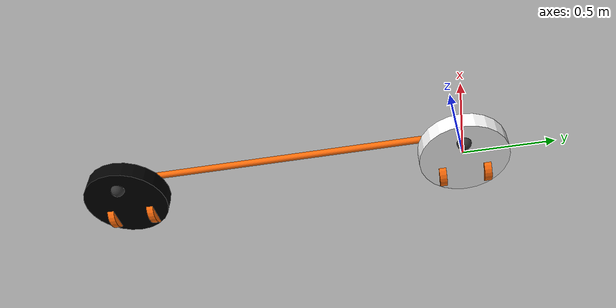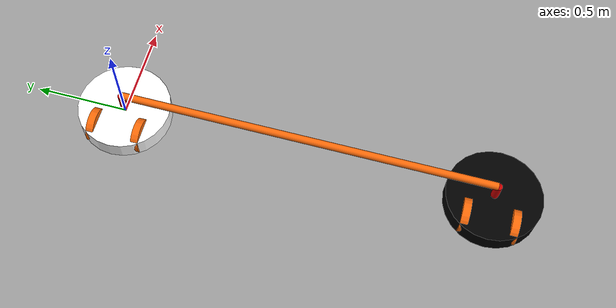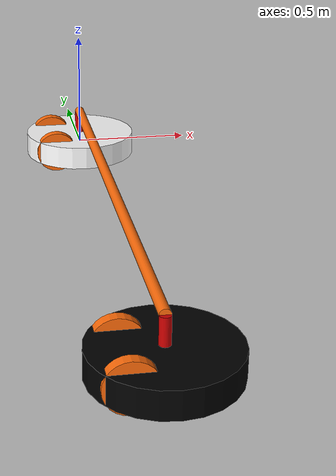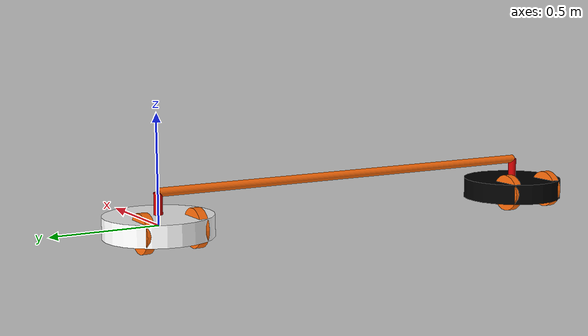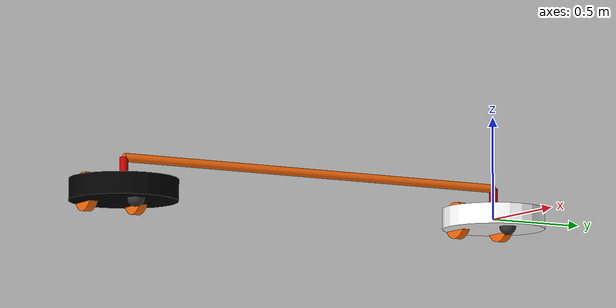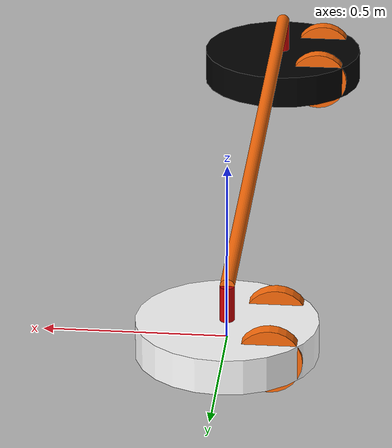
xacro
<?xml version="1.0"?>

<robot name="double_logger" xmlns:xacro="https://www.ros.org/wiki/xacro" >
    <!-- properties of link_log -->
    <xacro:property name="R_LOG" value="0.02"/>
    <xacro:property name="L_LOG" value="2"/>
    <xacro:property name="M_LOG" value="0.04"/>

    <!-- Included URDF Files -->
    <xacro:include filename="$(find loggers_description)/urdf/logger.urdf.xacro" />
    <xacro:include filename="$(find loggers_description)/urdf/logger_copy.urdf.xacro" />

    <!-- Instantiate logger_base_macro once (has no parameters atm) -->
    <xacro:logger_macro model_name="logger0"/>
    <!-- differential_drive_controller plugin for logger0-->
    <gazebo>
        <plugin name="differential_drive_controller" filename="libgazebo_ros_diff_drive.so">
            <legacyMode>false</legacyMode>
            <alwaysOn>true</alwaysOn>
            <updateRate>100</updateRate>
            <leftJoint>logger0-chassis2left_wheel</leftJoint>
            <rightJoint>logger0-chassis2right_wheel</rightJoint>
            <wheelSeparation>0.25</wheelSeparation>
            <wheelDiameter>0.18</wheelDiameter>
            <wheelTorque>1</wheelTorque>
            <commandTopic>logger0/cmd_vel</commandTopic>
            <odometryTopic>odom0</odometryTopic>
            <odometryFrame>odom0</odometryFrame>
            <robotBaseFrame>logger0-chassis</robotBaseFrame>
        </plugin>
    </gazebo>

    <joint name="logger0-hat2log" type="revolute">
        <origin rpy="0 0 0" xyz="0 0 ${L_HAT/2}"/>
        <limit effort="0" lower="0" upper="0" velocity="0"/>
        <parent link="logger0-hat"/>
        <child link="log" />
        <axis rpy="0 0 0" xyz="0 0 1"/>
    </joint>

    <link name="log">
        <visual>
            <origin rpy="${PI/2} 0 0" xyz="0 ${-L_LOG/2} 0"/>
            <geometry>
                <cylinder length="${L_LOG}" radius="${R_LOG}"/>
        </geometry>
        <material name="orange"/>
        </visual>
        <collision>
            <origin rpy="${PI/2} 0 0" xyz="0 ${-L_LOG/2} 0"/>
            <geometry>
                <cylinder length="${L_LOG}" radius="${R_LOG}"/>
            </geometry>
        </collision>
        <inertial>
            <mass value="${M_LOG}"/>
            <origin rpy="${PI/2} 0 0" xyz="0 ${-L_LOG/2} 0"/>
            <inertia ixx="${1/12*M_LOG*(3*R_LOG*R_LOG+L_LOG*L_LOG)}" ixy="0" ixz="0" iyy="${1/12*M_LOG*(3*R_LOG*R_LOG+L_LOG*L_LOG)}" iyz="0" izz="${1/2*M_LOG*R_LOG*R_LOG}"/>
        </inertial>
    </link>
    <gazebo reference="log">
        <material>Gazebo/Wood</material>
        <dampingFactor>0.01</dampingFactor>
        <maxVel>0.1</maxVel>
        <minDepth>0.005</minDepth>
        <selfCollide>true</selfCollide>
        <mu1>0.99</mu1>
        <mu2>0.99</mu2>
    </gazebo>

    <!-- Instantiate logger_base_macro once (has no parameters atm) -->
    <xacro:logger_copy_macro model_name="logger1" parent="log">
        <origin rpy="0 0 0" xyz="0 ${-L_LOG} 0"/>
    </xacro:logger_copy_macro>
    <!-- differential_drive_controller plugin for logger1 -->
    <gazebo>
        <plugin name="differential_drive_controller" filename="libgazebo_ros_diff_drive.so">
            <legacyMode>false</legacyMode>
            <alwaysOn>true</alwaysOn>
            <updateRate>100</updateRate>
            <leftJoint>logger1-chassis2left_wheel</leftJoint>
            <rightJoint>logger1-chassis2right_wheel</rightJoint>
            <wheelSeparation>0.25</wheelSeparation>
            <wheelDiameter>0.18</wheelDiameter>
            <wheelTorque>1</wheelTorque>
            <commandTopic>logger1/cmd_vel</commandTopic>
            <odometryTopic>odom1</odometryTopic>
            <odometryFrame>odom1</odometryFrame>
            <robotBaseFrame>logger1-chassis</robotBaseFrame>
        </plugin>
    </gazebo>

</robot>

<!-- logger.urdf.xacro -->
<robot xmlns:xacro="https://www.ros.org/wiki/xacro" >

    <!-- Constants for robot dimensions -->
    <xacro:property name="PI" value="3.1415926535897931"/>
    <!-- properties of link_hat -->
    <xacro:property name="R_HAT" value="0.02"/>
    <xacro:property name="L_HAT" value="0.1"/>
    <xacro:property name="M_HAT" value="0.5"/>
    <!-- properties of link_chassis -->
    <xacro:property name="R_CHASSIS" value="0.25"/>
    <xacro:property name="L_CHASSIS" value="0.1"/>
    <xacro:property name="M_CHASSIS" value="2"/>
    <!-- properties of link_caster -->
    <xacro:property name="R_CASTER" value="0.04"/>
    <xacro:property name="M_CASTER" value="0.1"/>
    <!-- properties of link_wheel -->
    <xacro:property name="R_WHEEL" value="0.09"/>
    <xacro:property name="L_WHEEL" value="0.04"/>
    <xacro:property name="M_WHEEL" value="0.5"/>
    <!-- Import all Gazebo-customization elements, including Gazebo colors -->
    <!-- Import Rviz colors -->
    <xacro:include filename="$(find loggers_description)/urdf/materials.xacro" />

    <!-- building the robot in following-->
    <xacro:macro name="logger_macro" params="model_name">
        <link name="${model_name}-chassis">
            <visual>
                <origin rpy="0 0 0" xyz="0 0 0"/>
                <geometry>
                    <cylinder length="${L_CHASSIS}" radius="${R_CHASSIS}"/>
                </geometry>
                <material name="white"/>
            </visual>
            <collision>
                <origin rpy="0 0 0" xyz="0 0 0"/>
                <geometry>
                    <cylinder length="${L_CHASSIS}" radius="${R_CHASSIS}"/>
                </geometry>
            </collision>
        </link>
        <gazebo reference="${model_name}-chassis">
            <material>Gazebo/White</material>
            <dampingFactor>0.01</dampingFactor>
            <maxVel>0.1</maxVel>
            <minDepth>0.005</minDepth>
            <selfCollide>true</selfCollide>
            <mu1>0.99</mu1>
            <mu2>0.99</mu2>
        </gazebo>
        <!-- kdl does not support a root link with an inertia, create a dummy link only contains inertia of base_link -->
        <joint name="${model_name}-chassis2cha_inertial" type="fixed">
            <origin xyz="0 0 0" rpy="0 0 0" />
            <parent link="${model_name}-chassis" />
            <child link="${model_name}-cha_inertial" />
        </joint>
        <link name="${model_name}-cha_inertial">
            <inertial>
                <mass value="${M_CHASSIS}"/>
                <origin rpy="0 0 0" xyz="0 0 0"/>
                <inertia ixx="${1/12*M_CHASSIS*(3*R_CHASSIS*R_CHASSIS+L_CHASSIS*L_CHASSIS)}" ixy="0" ixz="0" iyy="${1/12*M_CHASSIS*(3*R_CHASSIS*R_CHASSIS+L_CHASSIS*L_CHASSIS)}" iyz="0" izz="${1/2*M_CHASSIS*R_CHASSIS*R_CHASSIS}"/>
            </inertial>
        </link>

        <joint name="${model_name}-chassis2caster" type="fixed">
            <origin rpy="0 0 0" xyz="${R_CHASSIS/2} 0 ${-L_CHASSIS/2}"/>
            <parent link="${model_name}-chassis"/>
            <child link="${model_name}-caster"/>
        </joint>

        <link name="${model_name}-caster">
            <visual>
                <origin rpy="0 0 0" xyz="0 0 0"/>
                <geometry>
                    <sphere radius="${R_CASTER}"/>
                </geometry>
                <material name="grey"/>
            </visual>
            <collision>
                <origin rpy=" 0 0 0" xyz="0 0 0"/>
                <geometry>
                    <sphere radius="${R_CASTER}"/>
                </geometry>
            </collision>
            <inertial>
                <mass value="${M_CASTER}"/>
                <origin rpy="0 0 0" xyz="0 0 0"/>
                <inertia ixx="${2/5*M_CASTER*R_CASTER*R_CASTER}" ixy="0" ixz="0" iyy="${2/5*M_CASTER*R_CASTER*R_CASTER}" iyz="0" izz="${2/5*M_CASTER*R_CASTER*R_CASTER}"/>
            </inertial>
        </link>
        <gazebo reference="${model_name}-caster">
            <material>Gazebo/Grey</material>
            <dampingFactor>0.01</dampingFactor>
            <maxVel>0.1</maxVel>
            <minDepth>0.005</minDepth>
            <selfCollide>true</selfCollide>
            <mu1>0.0</mu1>
            <mu2>0.0</mu2>
        </gazebo>

        <joint name="${model_name}-chassis2left_wheel" type="continuous">
            <origin rpy="0 0 0" xyz="${-R_CHASSIS/2} ${-R_CHASSIS/2} 0"/>
            <parent link="${model_name}-chassis"/>
            <child link="${model_name}-left_wheel" />
            <axis rpy="0 0 0" xyz="0 1 0"/>
        </joint>

        <link name="${model_name}-left_wheel">
            <visual>
                <origin rpy="${PI/2} 0 0" xyz="0 0 0"/>
                <geometry>
                    <cylinder length="${L_WHEEL}" radius="${R_WHEEL}"/>
                </geometry>
                <material name="orange"/>
            </visual>
            <collision>
                <origin rpy="${PI/2} 0 0" xyz="0 0 0" />
                <geometry>
                    <cylinder length="${L_WHEEL}" radius="${R_WHEEL}"/>
                </geometry>
            </collision>
            <inertial>
                <mass value="${M_WHEEL}"/>
                <origin rpy="${PI/2} 0 0" xyz="0 0 0"/>
                <inertia ixx="${1/12*M_WHEEL*(3*R_WHEEL*R_WHEEL+L_WHEEL*L_WHEEL)}" ixy="0" ixz="0" iyy="${1/12*M_WHEEL*(3*R_WHEEL*R_WHEEL+L_WHEEL*L_WHEEL)}" iyz="0" izz="${1/2*M_WHEEL*R_WHEEL*R_WHEEL}"/>
            </inertial>
        </link>
        <gazebo reference="${model_name}-left_wheel">
            <material>Gazebo/Wood</material>
            <dampingFactor>0.01</dampingFactor>
            <maxVel>0.1</maxVel>
            <minDepth>0.005</minDepth>
            <selfCollide>true</selfCollide>
            <mu1>0.99</mu1>
            <mu2>0.99</mu2>
        </gazebo>

        <joint name="${model_name}-chassis2right_wheel" type="continuous">
            <origin rpy="0 0 0" xyz="${-R_CHASSIS/2} ${R_CHASSIS/2} 0"/>
            <parent link="${model_name}-chassis"/>
            <child link="${model_name}-right_wheel" />
            <axis rpy="0 0 0" xyz="0 1 0"/>
        </joint>

        <link name="${model_name}-right_wheel">
            <collision>
                <origin rpy="${PI/2} 0 0" xyz="0 0 0" />
                <geometry>
                    <cylinder length="${L_WHEEL}" radius="${R_WHEEL}"/>
                </geometry>
            </collision>
            <visual>
                <origin rpy="${PI/2} 0 0" xyz="0 0 0"/>
                <geometry>
                    <cylinder length="${L_WHEEL}" radius="${R_WHEEL}"/>
                </geometry>
                <material name="orange"/>
            </visual>
            <inertial>
                <mass value="${M_WHEEL}"/>
                <origin rpy="${PI/2} 0 0" xyz="0 0 0"/>
                <inertia ixx="${1/12*M_WHEEL*(3*R_WHEEL*R_WHEEL+L_WHEEL*L_WHEEL)}" ixy="0" ixz="0" iyy="${1/12*M_WHEEL*(3*R_WHEEL*R_WHEEL+L_WHEEL*L_WHEEL)}" iyz="0" izz="${1/2*M_WHEEL*R_WHEEL*R_WHEEL}"/>
            </inertial>
        </link>
        <gazebo reference="${model_name}-right_wheel">
            <material>Gazebo/Wood</material>
            <dampingFactor>0.01</dampingFactor>
            <maxVel>0.1</maxVel>
            <minDepth>0.005</minDepth>
            <selfCollide>true</selfCollide>
            <mu1>0.99</mu1>
            <mu2>0.99</mu2>
        </gazebo>

        <joint name="${model_name}-chassis2hat" type="continuous">
            <origin rpy="0 0 0" xyz="0.0 0 ${(L_HAT+L_CHASSIS)/2}"/>
            <parent link="${model_name}-chassis"/>
            <child link="${model_name}-hat" />
            <axis rpy="0 0 0" xyz="0 0 1"/>
        </joint>

        <link name="${model_name}-hat">
            <visual>
                <origin rpy="0 0 0" xyz="0 0 0"/>
                <geometry>
                    <cylinder length="${L_HAT}" radius="${R_HAT}"/>
                </geometry>
                <material name="red"/>
            </visual>
            <collision>
                <origin rpy="0 0 0" xyz="0 0 0"/>
                <geometry>
                    <cylinder length="${L_HAT}" radius="${R_HAT}"/>
                </geometry>
            </collision>
            <inertial>
                <mass value="${M_HAT}"/>
                <origin rpy="0 0 0" xyz="0 0 0.04"/>
                <inertia ixx="${1/12*M_HAT*(3*R_HAT*R_HAT+L_HAT*L_HAT)}" ixy="0" ixz="0" iyy="${1/12*M_HAT*(3*R_HAT*R_HAT+L_HAT*L_HAT)}" iyz="0" izz="${1/2*M_HAT*R_HAT*R_HAT}"/>
            </inertial>
        </link>
        <gazebo reference="${model_name}-hat">
            <material>Gazebo/Red</material>
            <dampingFactor>0.01</dampingFactor>
            <maxVel>0.1</maxVel>
            <minDepth>0.005</minDepth>
            <selfCollide>true</selfCollide>
            <mu1>0.99</mu1>
            <mu2>0.99</mu2>
        </gazebo>

    </xacro:macro>
</robot>

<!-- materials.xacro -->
<robot>

  <material name="black">
    <color rgba="0.0 0.0 0.0 1.0"/>
  </material>

  <material name="blue">
    <color rgba="0.0 0.0 0.8 1.0"/>
  </material>

  <material name="green">
    <color rgba="0.0 0.8 0.0 1.0"/>
  </material>

  <material name="grey">
    <color rgba="0.2 0.2 0.2 1.0"/>
  </material>

  <material name="orange">
    <color rgba="${255/255} ${108/255} ${10/255} 1.0"/>
  </material>

  <material name="brown">
    <color rgba="${222/255} ${207/255} ${195/255} 1.0"/>
  </material>

  <material name="red">
    <color rgba="0.8 0.0 0.0 1.0"/>
  </material>

  <material name="white">
    <color rgba="1.0 1.0 1.0 1.0"/>
  </material>

  <material name="uc_red">
    <color rgba="${224/255} ${1/255} ${34/255} 1.0"/>
  </material>

</robot>

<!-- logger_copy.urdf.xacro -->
<robot xmlns:xacro="https://www.ros.org/wiki/xacro" >

    <!-- Constants for robot dimensions -->
    <xacro:property name="PI" value="3.1415926535897931"/>
    <!-- properties of link_hat -->
    <xacro:property name="R_HAT" value="0.02"/>
    <xacro:property name="L_HAT" value="0.1"/>
    <xacro:property name="M_HAT" value="0.5"/>
    <!-- properties of link_chassis -->
    <xacro:property name="R_CHASSIS" value="0.25"/>
    <xacro:property name="L_CHASSIS" value="0.1"/>
    <xacro:property name="M_CHASSIS" value="2"/>
    <!-- properties of link_caster -->
    <xacro:property name="R_CASTER" value="0.04"/>
    <xacro:property name="M_CASTER" value="0.1"/>
    <!-- properties of link_wheel -->
    <xacro:property name="R_WHEEL" value="0.09"/>
    <xacro:property name="L_WHEEL" value="0.04"/>
    <xacro:property name="M_WHEEL" value="0.5"/>
    <!-- Import Rviz colors -->

    <!-- building the robot in following-->
    <xacro:macro name="logger_copy_macro" params="model_name parent *origin">
        <joint name="${parent}2${model_name}-hat" type="revolute">
            <xacro:insert_block name="origin" />
            <parent link="${parent}"/>
            <child link="${model_name}-hat"/>
            <limit lower="0" upper="0" effort="0" velocity="0"/>
            <axis xyz="0 0 1"/>
        </joint>

        <link name="${model_name}-hat">
            <visual>
                <origin rpy="0 0 0" xyz="0 0 ${-L_HAT/2}"/>
                <geometry>
                    <cylinder length="${L_HAT}" radius="${R_HAT}"/>
                </geometry>
                <material name="red"/>
            </visual>
            <collision>
                <origin rpy="0 0 0" xyz="0 0 ${-L_HAT/2}"/>
                <geometry>
                    <cylinder length="${L_HAT}" radius="${R_HAT}"/>
                </geometry>
            </collision>
            <inertial>
                <mass value="${M_HAT}"/>
                <origin rpy="0 0 0" xyz="0 0 ${-L_HAT/2}"/>
                <inertia ixx="${1/12*M_HAT*(3*R_HAT*R_HAT+L_HAT*L_HAT)}" ixy="0" ixz="0" iyy="${1/12*M_HAT*(3*R_HAT*R_HAT+L_HAT*L_HAT)}" iyz="0" izz="${1/2*M_HAT*R_HAT*R_HAT}"/>
            </inertial>
        </link>
        <gazebo reference="${model_name}-hat">
            <material>Gazebo/Red</material>
            <dampingFactor>0.02</dampingFactor>
            <maxVel>0.1</maxVel>
            <minDepth>0.005</minDepth>
            <selfCollide>true</selfCollide>
            <mu1>0.99</mu1>
            <mu2>0.99</mu2>
        </gazebo>

        <joint name="${model_name}-hat2chassis" type="continuous">
            <origin rpy="0 0 0" xyz="0.0 0 ${-L_HAT+-L_CHASSIS/2}"/>
            <parent link="${model_name}-hat" />
            <child link="${model_name}-chassis"/>
            <axis rpy="0 0 0" xyz="0 0 1"/>
        </joint>

        <link name="${model_name}-chassis">
            <visual>
                <origin rpy="0 0 0" xyz="0 0 0"/>
                <geometry>
                    <cylinder length="${L_CHASSIS}" radius="${R_CHASSIS}"/>
                </geometry>
                <material name="black"/>
            </visual>
            <collision>
                <origin rpy="0 0 0" xyz="0 0 0"/>
                <geometry>
                    <cylinder length="${L_CHASSIS}" radius="${R_CHASSIS}"/>
                </geometry>
            </collision>
            <inertial>
                <mass value="${M_CHASSIS}"/>
                <origin rpy="0 0 0" xyz="0 0 0"/>
                <inertia ixx="${1/12*M_CHASSIS*(3*R_CHASSIS*R_CHASSIS+L_CHASSIS*L_CHASSIS)}" ixy="0" ixz="0" iyy="${1/12*M_CHASSIS*(3*R_CHASSIS*R_CHASSIS+L_CHASSIS*L_CHASSIS)}" iyz="0" izz="${1/2*M_CHASSIS*R_CHASSIS*R_CHASSIS}"/>
            </inertial>
        </link>
        <gazebo reference="${model_name}-chassis">
            <material>Gazebo/Black</material>
            <dampingFactor>0.02</dampingFactor>
            <maxVel>0.1</maxVel>
            <minDepth>0.005</minDepth>
            <selfCollide>true</selfCollide>
            <mu1>0.99</mu1>
            <mu2>0.99</mu2>
        </gazebo>

        <joint name="${model_name}-chassis2caster" type="fixed">
            <origin rpy="0 0 0" xyz="${R_CHASSIS/2} 0 ${-L_CHASSIS/2}"/>
            <parent link="${model_name}-chassis"/>
            <child link="${model_name}-caster"/>
        </joint>

        <link name="${model_name}-caster">
            <visual>
                <origin rpy="0 0 0" xyz="0 0 0"/>
                <geometry>
                    <sphere radius="${R_CASTER}"/>
                </geometry>
                <material name="grey"/>
            </visual>
            <collision>
                <origin rpy=" 0 0 0" xyz="0 0 0"/>
                <geometry>
                    <sphere radius="${R_CASTER}"/>
                </geometry>
            </collision>
            <inertial>
                <mass value="${M_CASTER}"/>
                <origin rpy="0 0 0" xyz="0 0 0"/>
                <inertia ixx="${2/5*M_CASTER*R_CASTER*R_CASTER}" ixy="0" ixz="0" iyy="${2/5*M_CASTER*R_CASTER*R_CASTER}" iyz="0" izz="${2/5*M_CASTER*R_CASTER*R_CASTER}"/>
            </inertial>
        </link>
        <gazebo reference="${model_name}-caster">
            <material>Gazebo/Grey</material>
            <dampingFactor>0.02</dampingFactor>
            <maxVel>0.1</maxVel>
            <minDepth>0.005</minDepth>
            <selfCollide>true</selfCollide>
            <mu1>0.0</mu1>
            <mu2>0.0</mu2>
        </gazebo>

        <joint name="${model_name}-chassis2left_wheel" type="continuous">
            <origin rpy="0 0 0" xyz="${-R_CHASSIS/2} ${-R_CHASSIS/2} 0"/>
            <parent link="${model_name}-chassis"/>
            <child link="${model_name}-left_wheel" />
            <axis rpy="0 0 0" xyz="0 1 0"/>
        </joint>

        <link name="${model_name}-left_wheel">
            <visual>
                <origin rpy="${PI/2} 0 0" xyz="0 0 0"/>
                <geometry>
                    <cylinder length="${L_WHEEL}" radius="${R_WHEEL}"/>
                </geometry>
                <material name="orange"/>
            </visual>
            <collision>
                <origin rpy="${PI/2} 0 0" xyz="0 0 0" />
                <geometry>
                    <cylinder length="${L_WHEEL}" radius="${R_WHEEL}"/>
                </geometry>
            </collision>
            <inertial>
                <mass value="${M_WHEEL}"/>
                <origin rpy="${PI/2} 0 0" xyz="0 0 0"/>
                <inertia ixx="${1/12*M_WHEEL*(3*R_WHEEL*R_WHEEL+L_WHEEL*L_WHEEL)}" ixy="0" ixz="0" iyy="${1/12*M_WHEEL*(3*R_WHEEL*R_WHEEL+L_WHEEL*L_WHEEL)}" iyz="0" izz="${1/2*M_WHEEL*R_WHEEL*R_WHEEL}"/>
            </inertial>
        </link>
        <gazebo reference="${model_name}-left_wheel">
            <material>Gazebo/Wood</material>
            <dampingFactor>0.02</dampingFactor>
            <maxVel>0.1</maxVel>
            <minDepth>0.005</minDepth>
            <selfCollide>true</selfCollide>
            <mu1>0.99</mu1>
            <mu2>0.99</mu2>
        </gazebo>

        <joint name="${model_name}-chassis2right_wheel" type="continuous">
            <origin rpy="0 0 0" xyz="${-R_CHASSIS/2} ${R_CHASSIS/2} 0"/>
            <parent link="${model_name}-chassis"/>
            <child link="${model_name}-right_wheel" />
            <axis rpy="0 0 0" xyz="0 1 0"/>
        </joint>

        <link name="${model_name}-right_wheel">
            <collision>
                <origin rpy="${PI/2} 0 0" xyz="0 0 0" />
                <geometry>
                    <cylinder length="${L_WHEEL}" radius="${R_WHEEL}"/>
                </geometry>
            </collision>
            <visual>
                <origin rpy="${PI/2} 0 0" xyz="0 0 0"/>
                <geometry>
                    <cylinder length="${L_WHEEL}" radius="${R_WHEEL}"/>
                </geometry>
                <material name="orange"/>
            </visual>
            <inertial>
                <mass value="${M_WHEEL}"/>
                <origin rpy="${PI/2} 0 0" xyz="0 0 0"/>
                <inertia ixx="${1/12*M_WHEEL*(3*R_WHEEL*R_WHEEL+L_WHEEL*L_WHEEL)}" ixy="0" ixz="0" iyy="${1/12*M_WHEEL*(3*R_WHEEL*R_WHEEL+L_WHEEL*L_WHEEL)}" iyz="0" izz="${1/2*M_WHEEL*R_WHEEL*R_WHEEL}"/>
            </inertial>
        </link>
        <gazebo reference="${model_name}-right_wheel">
            <material>Gazebo/Wood</material>
            <dampingFactor>0.02</dampingFactor>
            <maxVel>0.1</maxVel>
            <minDepth>0.005</minDepth>
            <selfCollide>true</selfCollide>
            <mu1>0.99</mu1>
            <mu2>0.99</mu2>
        </gazebo>

    </xacro:macro>
</robot>
